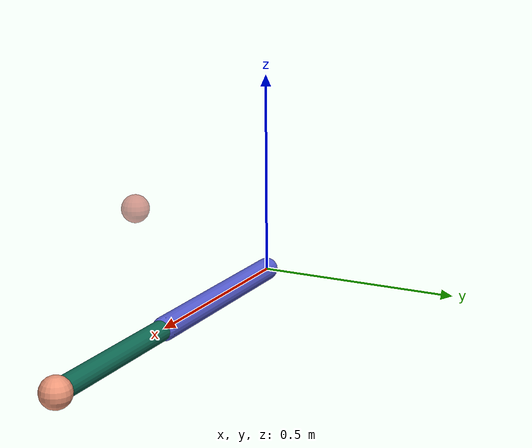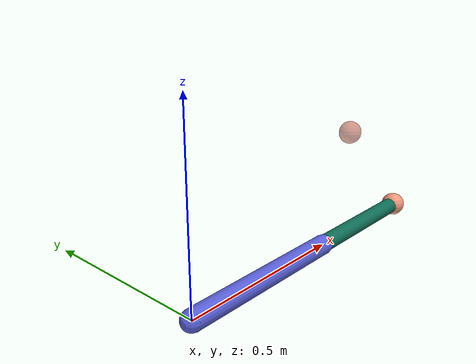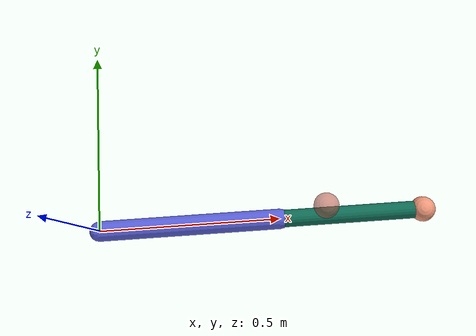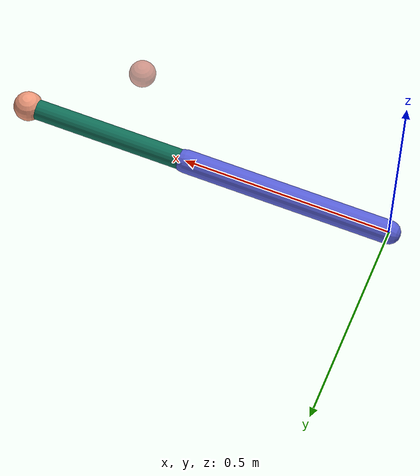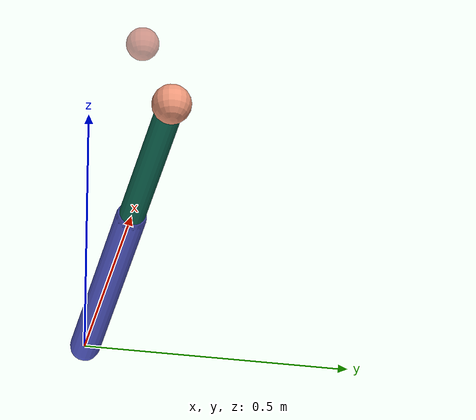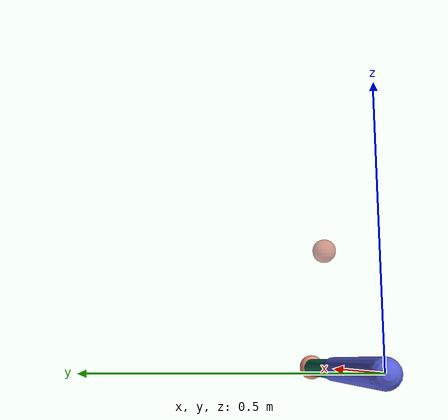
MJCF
<mujoco model="arm2">

  <option gravity="0 0 0" timestep="0.002"/>

  <!-- Defaults: every joint and link geom inherits these unless overridden.
       Avoids repeating the same attributes on each body. -->
  <default>
    <joint type="hinge" axis="0 -1 0" damping="0"/>
    <geom  type="capsule" rgba="0.35 0.38 0.85 1"/>
  </default>

  <worldbody>

    <light name="top" pos="0 0 2" dir="0 0 -1"/>

    <!-- Visual reference only: a thin marker at the origin (the shoulder). -->
    <geom name="origin_marker" type="sphere" size="0.02" pos="0 0 0"
          rgba="0.6 0.6 0.6 1" contype="0" conaffinity="0"/>

    <!-- ---------------- LINK 1  (shoulder -> elbow) ---------------- -->
    <!-- Body origin sits at the SHOULDER, which is the world origin.
         This is frame {1} from the derivation. -->
    <body name="link1" pos="0 0 0">

      <joint name="theta1" pos="0 0 0"/>

      <!-- The link itself: drawn along the body's own +x axis, length L1.
           This is the "x-axis points along the link" convention. -->
      <geom name="link1_geom" fromto="0 0 0  0.50 0 0" size="0.028"/>

      <!-- ---------------- LINK 2  (elbow -> club head) ---------------- -->
      <!-- Child body offset by L1 along link 1's own x-axis -> the elbow.
           This offset IS the translation column of the transform. -->
      <body name="link2" pos="0.50 0 0">

        <joint name="theta2" pos="0 0 0"/>

        <geom name="link2_geom" fromto="0 0 0  0.40 0 0" size="0.024"
              rgba="0.06 0.43 0.34 1"/>

        <!-- Tip marker at the far end of link 2 = the club head.
             A site is a massless, non-colliding reference point. We read
             its world position out of the simulation to verify the IK. -->
        <site name="tip" pos="0.40 0 0" size="0.035" type="sphere"
              rgba="0.94 0.60 0.48 1"/>

      </body>
    </body>

    <!-- Target marker: a non-colliding sphere we move to the desired (x,z)
         so we can see, visually, whether the tip actually lands on it. -->
    <body name="target" mocap="true" pos="0.6 0 0.3">
      <geom name="target_geom" type="sphere" size="0.03"
            rgba="0.75 0.35 0.29 0.6" contype="0" conaffinity="0"/>
    </body>

  </worldbody>

</mujoco>
